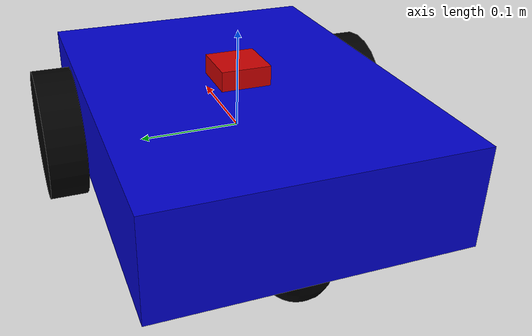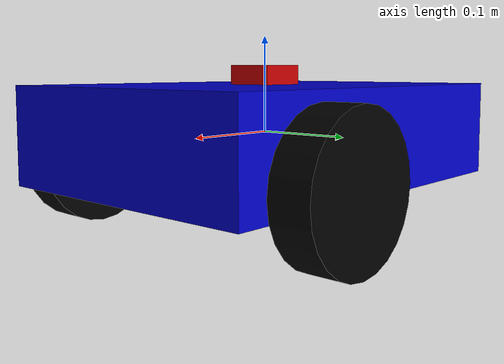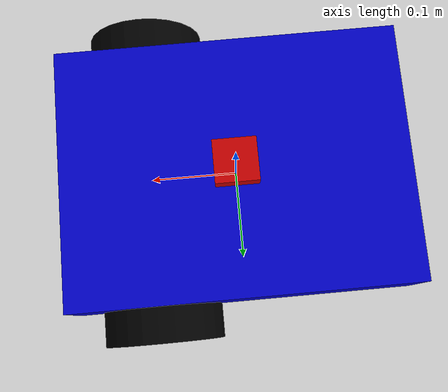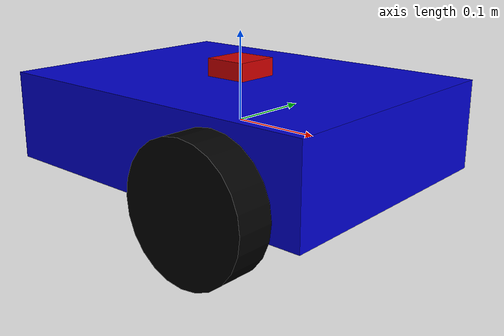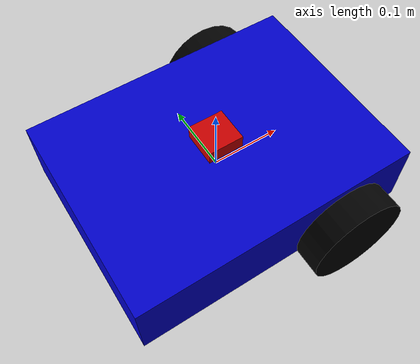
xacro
<?xml version="1.0"?>
<robot name="imu_robot" xmlns:xacro="http://www.ros.org/wiki/xacro">

  <material name="blue"><color rgba="0.0 0.0 0.8 1.0"/></material>
  <material name="black"><color rgba="0.0 0.0 0.0 1.0"/></material>
  <material name="red"><color rgba="0.8 0.0 0.0 1.0"/></material>

  <link name="base_link">
    <visual>
      <geometry><box size="0.4 0.3 0.1"/></geometry>
      <material name="blue"/>
    </visual>
    <collision>
      <geometry><box size="0.4 0.3 0.1"/></geometry>
    </collision>
    <inertial>
      <mass value="5.0"/>
      <inertia ixx="0.05" ixy="0.0" ixz="0.0"
               iyy="0.05" iyz="0.0" izz="0.08"/>
    </inertial>
  </link>

  <link name="left_wheel">
    <visual>
      <geometry><cylinder radius="0.07" length="0.04"/></geometry>
      <material name="black"/>
    </visual>
    <collision>
      <geometry><cylinder radius="0.07" length="0.04"/></geometry>
    </collision>
    <inertial>
      <mass value="0.5"/>
      <inertia ixx="0.001" ixy="0.0" ixz="0.0"
               iyy="0.001" iyz="0.0" izz="0.001"/>
    </inertial>
  </link>

  <joint name="left_wheel_joint" type="continuous">
    <parent link="base_link"/>
    <child link="left_wheel"/>
    <origin xyz="0.1 0.17 -0.03" rpy="-1.5707 0 0"/>
    <axis xyz="0 0 1"/>
  </joint>

  <link name="right_wheel">
    <visual>
      <geometry><cylinder radius="0.07" length="0.04"/></geometry>
      <material name="black"/>
    </visual>
    <collision>
      <geometry><cylinder radius="0.07" length="0.04"/></geometry>
    </collision>
    <inertial>
      <mass value="0.5"/>
      <inertia ixx="0.001" ixy="0.0" ixz="0.0"
               iyy="0.001" iyz="0.0" izz="0.001"/>
    </inertial>
  </link>

  <joint name="right_wheel_joint" type="continuous">
    <parent link="base_link"/>
    <child link="right_wheel"/>
    <origin xyz="0.1 -0.17 -0.03" rpy="-1.5707 0 0"/>
    <axis xyz="0 0 1"/>
  </joint>

  <link name="caster_wheel">
    <visual>
      <geometry><sphere radius="0.035"/></geometry>
      <material name="black"/>
    </visual>
    <collision>
      <geometry><sphere radius="0.035"/></geometry>
    </collision>
    <inertial>
      <mass value="0.2"/>
      <inertia ixx="0.0001" ixy="0.0" ixz="0.0"
               iyy="0.0001" iyz="0.0" izz="0.0001"/>
    </inertial>
  </link>

  <joint name="caster_joint" type="fixed">
    <parent link="base_link"/>
    <child link="caster_wheel"/>
    <origin xyz="-0.15 0.0 -0.065" rpy="0 0 0"/>
  </joint>

  <link name="imu_link">
    <visual>
      <geometry><box size="0.05 0.05 0.02"/></geometry>
      <material name="red"/>
    </visual>
    <inertial>
      <mass value="0.01"/>
      <inertia ixx="0.00001" ixy="0.0" ixz="0.0"
               iyy="0.00001" iyz="0.0" izz="0.00001"/>
    </inertial>
  </link>

  <joint name="imu_joint" type="fixed">
    <parent link="base_link"/>
    <child link="imu_link"/>
    <origin xyz="0.0 0.0 0.06" rpy="0 0 0"/>
  </joint>

  <gazebo>
    <plugin name="differential_drive_controller"
            filename="libgazebo_ros_diff_drive.so">
      <left_joint>left_wheel_joint</left_joint>
      <right_joint>right_wheel_joint</right_joint>
      <wheel_separation>0.34</wheel_separation>
      <wheel_diameter>0.14</wheel_diameter>
      <robot_base_frame>base_link</robot_base_frame>
      <publish_odom>true</publish_odom>
      <publish_odom_tf>true</publish_odom_tf>
      <publish_wheel_tf>true</publish_wheel_tf>
      <odometry_topic>odom</odometry_topic>
      <command_topic>cmd_vel</command_topic>
      <update_rate>50</update_rate>
    </plugin>
  </gazebo>

  <gazebo reference="imu_link">
    <sensor name="imu_sensor" type="imu">
      <always_on>true</always_on>
      <update_rate>50</update_rate>
      <plugin name="imu_plugin" filename="libgazebo_ros_imu_sensor.so">
        <ros>
          <remapping>~/out:=/imu/data</remapping>
        </ros>
        <initial_orientation_as_reference>false</initial_orientation_as_reference>
      </plugin>
      <imu>
        <angular_velocity>
          <x><noise type="gaussian"><mean>0.0</mean><stddev>0.01</stddev></noise></x>
          <y><noise type="gaussian"><mean>0.0</mean><stddev>0.01</stddev></noise></y>
          <z><noise type="gaussian"><mean>0.0</mean><stddev>0.01</stddev></noise></z>
        </angular_velocity>
        <linear_acceleration>
          <x><noise type="gaussian"><mean>0.0</mean><stddev>0.01</stddev></noise></x>
          <y><noise type="gaussian"><mean>0.0</mean><stddev>0.01</stddev></noise></y>
          <z><noise type="gaussian"><mean>0.0</mean><stddev>0.01</stddev></noise></z>
        </linear_acceleration>
        <orientation>
          <x><noise type="gaussian"><mean>0.0</mean><stddev>0.005</stddev></noise></x>
          <y><noise type="gaussian"><mean>0.0</mean><stddev>0.005</stddev></noise></y>
          <z><noise type="gaussian"><mean>0.0</mean><stddev>0.005</stddev></noise></z>
        </orientation>
      </imu>
    </sensor>
  </gazebo>

</robot>
